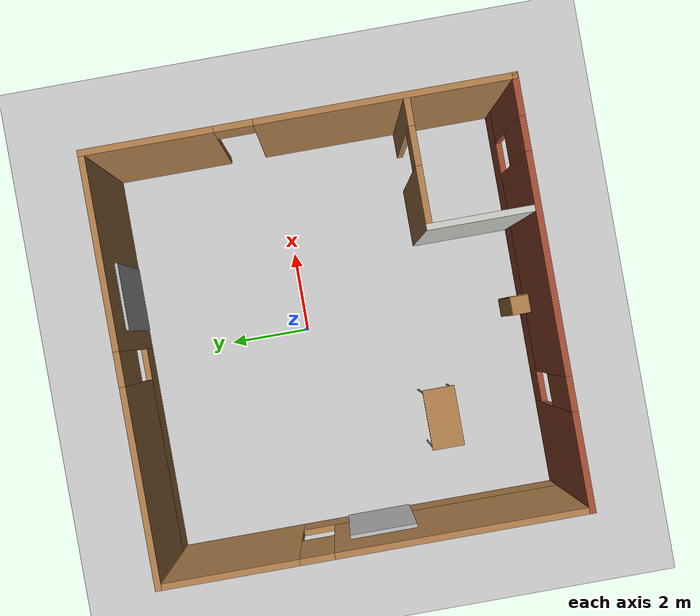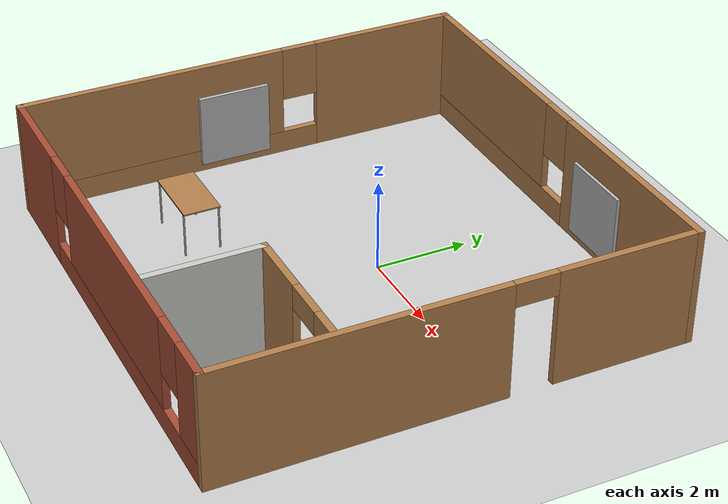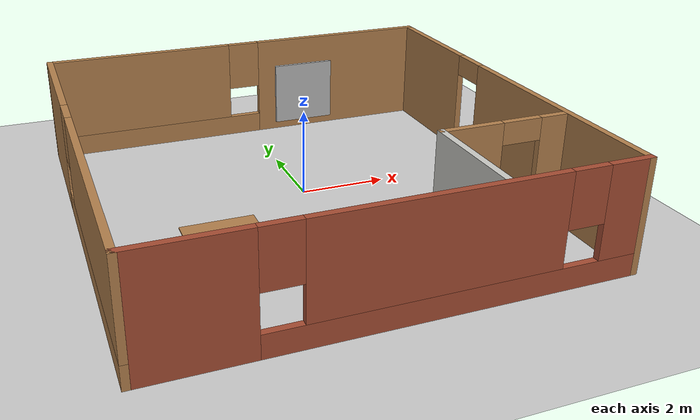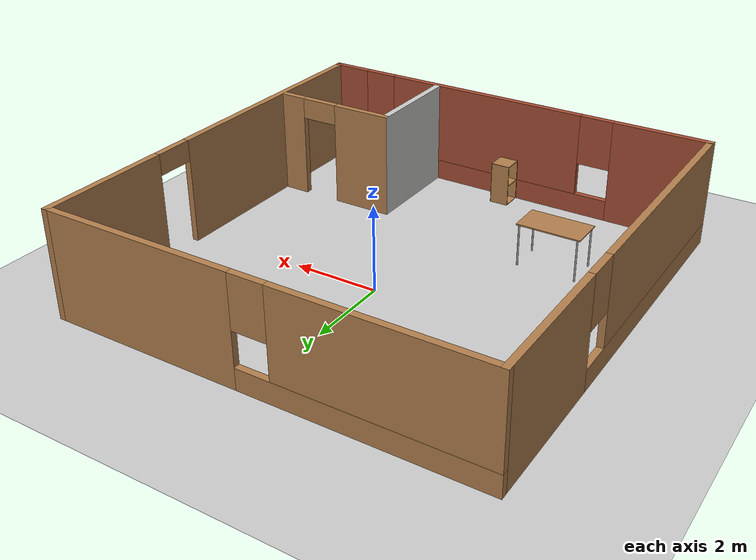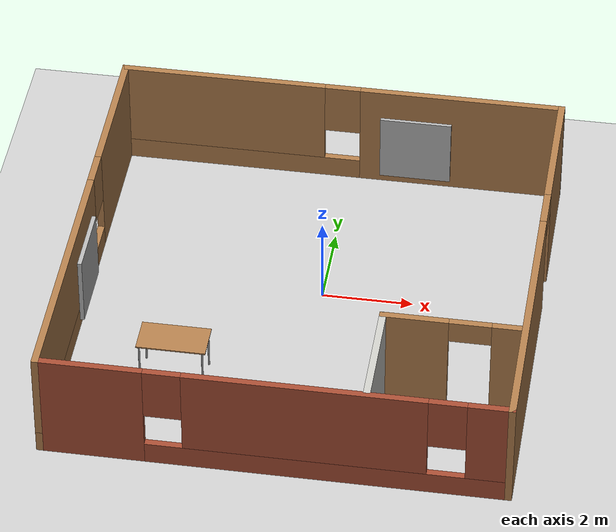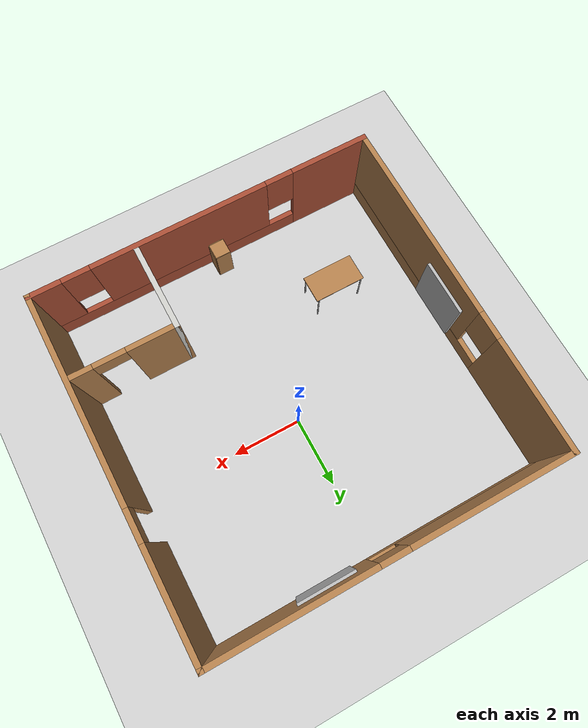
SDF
<sdf version="1.4">
 <world name="default">
  <light name="sun" type="directional">
   <pose>0 0 10 0 -0 0</pose>
   <diffuse>0.8 0.8 0.8 1</diffuse>
   <specular>0.2 0.2 0.2 1</specular>
   <attenuation>
    <range>1000</range>
    <constant>0.9</constant>
    <linear>0.01</linear>
    <quadratic>0.001</quadratic>
   </attenuation>
   <direction>-0.5 0.1 -0.9</direction>
   <spot><inner_angle>0</inner_angle><outer_angle>0</outer_angle><falloff>0</falloff></spot>
  </light>
  <light name="my_point_light" type="point">
   <pose>0 0 8 0 0 0</pose>
   <diffuse>1 1 1 0.001</diffuse>
   <attenuation>
    <range>10.0</range>
    <linear>0.01</linear>
    <constant>0.01</constant>
    <quadratic>0.001</quadratic>
   </attenuation>
  </light>
  <model name="omars_mesh">
   <pose>1.5 4.1 1  0 0 1.570795</pose>
   <static>true</static>
   <link name="o_body">
    <visual name="o_visual">
     <geometry><mesh><uri>file:///home/oelhajji/catkin_ws/src/my_first_robot/model/omar.dae</uri></mesh></geometry>
    </visual>
   </link>
  </model>
  <model name="ewans_mesh">
   <pose>-5 -1 1  0 0 0</pose>
   <static>true</static>
   <link name="e_body">
    <visual name="e_visual">
     <geometry><mesh><uri>file:///home/oelhajji/catkin_ws/src/my_first_robot/model/ewan.dae</uri></mesh></geometry>
    </visual>
   </link>
  </model>
  <model name="ground_plane">
   <static>1</static>
   <link name="link">
    <collision name="collision">
     <geometry><plane><normal>0 0 1</normal><size>100 100</size></plane></geometry>
     <surface>
      <contact><collide_bitmask>65535</collide_bitmask></contact>
      <friction><ode><mu>100</mu><mu2>50</mu2></ode></friction>
     </surface>
    </collision>
    <visual name="visual">
     <cast_shadows>0</cast_shadows>
     <geometry><plane><normal>0 0 1</normal><size>100 100</size></plane></geometry>
     <material>
      <script><uri>file://media/materials/scripts/gazebo.material</uri><name>Gazebo/Grey</name></script>
     </material>
    </visual>
   </link>
  </model>
  <gravity>0 0 -9.8</gravity>
  <magnetic_field>6e-06 2.3e-05 -4.2e-05</magnetic_field>
  <atmosphere type="adiabatic"/>
  <physics type="ode">
   <max_step_size>0.001</max_step_size>
   <real_time_factor>1</real_time_factor>
   <real_time_update_rate>1000</real_time_update_rate>
  </physics>
  <scene><ambient>0.4 0.4 0.4 1</ambient><background>0.7 0.7 0.7 1</background><shadows>1</shadows></scene>
  <spherical_coordinates>
   <surface_model>EARTH_WGS84</surface_model>
   <latitude_deg>0</latitude_deg>
   <longitude_deg>0</longitude_deg>
   <elevation>0</elevation>
   <heading_deg>0</heading_deg>
  </spherical_coordinates>
  <model name="new_world">
   <pose>-0.192361 -0.72628 0 0 -0 0</pose>
   <link name="Wall_15">
    <pose>0 -4.925 0 0 -0 0</pose>
    <visual name="Wall_15_Visual_0">
     <pose>-3.84593 0 1.25 0 -0 0</pose>
     <geometry><box><size>2.30814 0.15 2.5</size></box></geometry>
     <material>
      <script><uri>file://media/materials/scripts/gazebo.material</uri><name>Gazebo/Bricks</name></script>
      <ambient>1 1 1 1</ambient>
     </material>
     <meta><layer>0</layer></meta>
    </visual>
    <collision name="Wall_15_Collision_0">
     <geometry><box><size>2.30814 0.15 2.5</size></box></geometry>
     <pose>-3.84593 0 1.25 0 -0 0</pose>
    </collision>
    <visual name="Wall_15_Visual_1">
     <pose>1.15407 0 0.25 0 -0 0</pose>
     <geometry><box><size>7.69186 0.15 0.5</size></box></geometry>
     <material>
      <script><uri>file://media/materials/scripts/gazebo.material</uri><name>Gazebo/Bricks</name></script>
      <ambient>1 1 1 1</ambient>
     </material>
     <meta><layer>0</layer></meta>
    </visual>
    <collision name="Wall_15_Collision_1">
     <geometry><box><size>7.69186 0.15 0.5</size></box></geometry>
     <pose>1.15407 0 0.25 0 -0 0</pose>
    </collision>
    <visual name="Wall_15_Visual_2">
     <pose>0.660761 0 1.5 0 -0 0</pose>
     <geometry><box><size>5.10524 0.15 2</size></box></geometry>
     <material>
      <script><uri>file://media/materials/scripts/gazebo.material</uri><name>Gazebo/Bricks</name></script>
      <ambient>1 1 1 1</ambient>
     </material>
     <meta><layer>0</layer></meta>
    </visual>
    <collision name="Wall_15_Collision_2">
     <geometry><box><size>5.10524 0.15 2</size></box></geometry>
     <pose>0.660761 0 1.5 0 -0 0</pose>
    </collision>
    <visual name="Wall_15_Visual_3">
     <pose>4.50669 0 1.5 0 -0 0</pose>
     <geometry><box><size>0.986616 0.15 2</size></box></geometry>
     <material>
      <script><uri>file://media/materials/scripts/gazebo.material</uri><name>Gazebo/Bricks</name></script>
      <ambient>1 1 1 1</ambient>
     </material>
     <meta><layer>0</layer></meta>
    </visual>
    <collision name="Wall_15_Collision_3">
     <geometry><box><size>0.986616 0.15 2</size></box></geometry>
     <pose>4.50669 0 1.5 0 -0 0</pose>
    </collision>
    <visual name="Wall_15_Visual_4">
     <pose>-2.29186 0 1.9 0 -0 0</pose>
     <geometry><box><size>0.8 0.15 1.2</size></box></geometry>
     <material>
      <script><uri>file://media/materials/scripts/gazebo.material</uri><name>Gazebo/Bricks</name></script>
      <ambient>1 1 1 1</ambient>
     </material>
     <meta><layer>0</layer></meta>
    </visual>
    <collision name="Wall_15_Collision_4">
     <geometry><box><size>0.8 0.15 1.2</size></box></geometry>
     <pose>-2.29186 0 1.9 0 -0 0</pose>
    </collision>
    <visual name="Wall_15_Visual_5">
     <pose>3.61338 0 1.9 0 -0 0</pose>
     <geometry><box><size>0.8 0.15 1.2</size></box></geometry>
     <material>
      <script><uri>file://media/materials/scripts/gazebo.material</uri><name>Gazebo/Bricks</name></script>
      <ambient>1 1 1 1</ambient>
     </material>
     <meta><layer>0</layer></meta>
    </visual>
    <collision name="Wall_15_Collision_5">
     <geometry><box><size>0.8 0.15 1.2</size></box></geometry>
     <pose>3.61338 0 1.9 0 -0 0</pose>
    </collision>
   </link>
   <link name="Wall_16">
    <pose>4.925 0 0 0 -0 1.5708</pose>
    <visual name="Wall_16_Visual_0">
     <pose>-1.98961 0 1.25 0 -0 0</pose>
     <geometry><box><size>6.02079 0.15 2.5</size></box></geometry>
     <material>
      <script><uri>file://media/materials/scripts/gazebo.material</uri><name>Gazebo/Wood</name></script>
      <ambient>1 1 1 1</ambient>
     </material>
     <meta><layer>0</layer></meta>
    </visual>
    <collision name="Wall_16_Collision_0">
     <geometry><box><size>6.02079 0.15 2.5</size></box></geometry>
     <pose>-1.98961 0 1.25 0 -0 0</pose>
    </collision>
    <visual name="Wall_16_Visual_1">
     <pose>3.46039 0 1.25 0 -0 0</pose>
     <geometry><box><size>3.07921 0.15 2.5</size></box></geometry>
     <material>
      <script><uri>file://media/materials/scripts/gazebo.material</uri><name>Gazebo/Wood</name></script>
      <ambient>1 1 1 1</ambient>
     </material>
     <meta><layer>0</layer></meta>
    </visual>
    <collision name="Wall_16_Collision_1">
     <geometry><box><size>3.07921 0.15 2.5</size></box></geometry>
     <pose>3.46039 0 1.25 0 -0 0</pose>
    </collision>
    <visual name="Wall_16_Visual_2">
     <pose>1.47079 0 2.25 0 -0 0</pose>
     <geometry><box><size>0.9 0.15 0.5</size></box></geometry>
     <material>
      <script><uri>file://media/materials/scripts/gazebo.material</uri><name>Gazebo/Wood</name></script>
      <ambient>1 1 1 1</ambient>
     </material>
     <meta><layer>0</layer></meta>
    </visual>
    <collision name="Wall_16_Collision_2">
     <geometry><box><size>0.9 0.15 0.5</size></box></geometry>
     <pose>1.47079 0 2.25 0 -0 0</pose>
    </collision>
   </link>
   <link name="Wall_17">
    <pose>0 4.925 0 0 -0 3.14159</pose>
    <visual name="Wall_17_Visual_0">
     <pose>-2.71118 0 1.25 0 -0 0</pose>
     <geometry><box><size>4.57764 0.15 2.5</size></box></geometry>
     <material>
      <script><uri>file://media/materials/scripts/gazebo.material</uri><name>Gazebo/Wood</name></script>
      <ambient>1 1 1 1</ambient>
     </material>
     <meta><layer>0</layer></meta>
    </visual>
    <collision name="Wall_17_Collision_0">
     <geometry><box><size>4.57764 0.15 2.5</size></box></geometry>
     <pose>-2.71118 0 1.25 0 -0 0</pose>
    </collision>
    <visual name="Wall_17_Visual_1">
     <pose>2.28882 0 0.25 0 -0 0</pose>
     <geometry><box><size>5.42236 0.15 0.5</size></box></geometry>
     <material>
      <script><uri>file://media/materials/scripts/gazebo.material</uri><name>Gazebo/Wood</name></script>
      <ambient>1 1 1 1</ambient>
     </material>
     <meta><layer>0</layer></meta>
    </visual>
    <collision name="Wall_17_Collision_1">
     <geometry><box><size>5.42236 0.15 0.5</size></box></geometry>
     <pose>2.28882 0 0.25 0 -0 0</pose>
    </collision>
    <visual name="Wall_17_Visual_2">
     <pose>2.68882 0 1.5 0 -0 0</pose>
     <geometry><box><size>4.62236 0.15 2</size></box></geometry>
     <material>
      <script><uri>file://media/materials/scripts/gazebo.material</uri><name>Gazebo/Wood</name></script>
      <ambient>1 1 1 1</ambient>
     </material>
     <meta><layer>0</layer></meta>
    </visual>
    <collision name="Wall_17_Collision_2">
     <geometry><box><size>4.62236 0.15 2</size></box></geometry>
     <pose>2.68882 0 1.5 0 -0 0</pose>
    </collision>
    <visual name="Wall_17_Visual_3">
     <pose>-0.022357 0 1.9 0 -0 0</pose>
     <geometry><box><size>0.8 0.15 1.2</size></box></geometry>
     <material>
      <script><uri>file://media/materials/scripts/gazebo.material</uri><name>Gazebo/Wood</name></script>
      <ambient>1 1 1 1</ambient>
     </material>
     <meta><layer>0</layer></meta>
    </visual>
    <collision name="Wall_17_Collision_3">
     <geometry><box><size>0.8 0.15 1.2</size></box></geometry>
     <pose>-0.022357 0 1.9 0 -0 0</pose>
    </collision>
   </link>
   <link name="Wall_18">
    <pose>-4.925 0 0 0 -0 -1.5708</pose>
    <visual name="Wall_18_Visual_0">
     <pose>-3.35559 0 1.25 0 -0 0</pose>
     <geometry><box><size>3.28881 0.15 2.5</size></box></geometry>
     <material>
      <script><uri>file://media/materials/scripts/gazebo.material</uri><name>Gazebo/Wood</name></script>
      <ambient>1 1 1 1</ambient>
     </material>
     <meta><layer>0</layer></meta>
    </visual>
    <collision name="Wall_18_Collision_0">
     <geometry><box><size>3.28881 0.15 2.5</size></box></geometry>
     <pose>-3.35559 0 1.25 0 -0 0</pose>
    </collision>
    <visual name="Wall_18_Visual_1">
     <pose>1.64441 0 0.25 0 -0 0</pose>
     <geometry><box><size>6.71119 0.15 0.5</size></box></geometry>
     <material>
      <script><uri>file://media/materials/scripts/gazebo.material</uri><name>Gazebo/Wood</name></script>
      <ambient>1 1 1 1</ambient>
     </material>
     <meta><layer>0</layer></meta>
    </visual>
    <collision name="Wall_18_Collision_1">
     <geometry><box><size>6.71119 0.15 0.5</size></box></geometry>
     <pose>1.64441 0 0.25 0 -0 0</pose>
    </collision>
    <visual name="Wall_18_Visual_2">
     <pose>2.04441 0 1.5 0 -0 0</pose>
     <geometry><box><size>5.91119 0.15 2</size></box></geometry>
     <material>
      <script><uri>file://media/materials/scripts/gazebo.material</uri><name>Gazebo/Wood</name></script>
      <ambient>1 1 1 1</ambient>
     </material>
     <meta><layer>0</layer></meta>
    </visual>
    <collision name="Wall_18_Collision_2">
     <geometry><box><size>5.91119 0.15 2</size></box></geometry>
     <pose>2.04441 0 1.5 0 -0 0</pose>
    </collision>
    <visual name="Wall_18_Visual_3">
     <pose>-1.31119 0 1.9 0 -0 0</pose>
     <geometry><box><size>0.8 0.15 1.2</size></box></geometry>
     <material>
      <script><uri>file://media/materials/scripts/gazebo.material</uri><name>Gazebo/Wood</name></script>
      <ambient>1 1 1 1</ambient>
     </material>
     <meta><layer>0</layer></meta>
    </visual>
    <collision name="Wall_18_Collision_3">
     <geometry><box><size>0.8 0.15 1.2</size></box></geometry>
     <pose>-1.31119 0 1.9 0 -0 0</pose>
    </collision>
   </link>
   <link name="Wall_24">
    <collision name="Wall_24_Collision">
     <geometry><box><size>2.5 0.15 2.5</size></box></geometry>
     <pose>0 0 1.25 0 -0 0</pose>
    </collision>
    <visual name="Wall_24_Visual">
     <pose>0 0 1.25 0 -0 0</pose>
     <geometry><box><size>2.5 0.15 2.5</size></box></geometry>
     <material>
      <script><uri>file://media/materials/scripts/gazebo.material</uri><name>Gazebo/CeilingTiled</name></script>
      <ambient>1 1 1 1</ambient>
     </material>
     <meta><layer>0</layer></meta>
    </visual>
    <pose>1.93757 -3.63186 0 0 -0 1.5708</pose>
   </link>
   <link name="Wall_25">
    <pose>3.36257 -2.45686 0 0 -0 0</pose>
    <visual name="Wall_25_Visual_0">
     <pose>-0.769793 0 1.25 0 -0 0</pose>
     <geometry><box><size>1.46041 0.15 2.5</size></box></geometry>
     <material>
      <script><uri>file://media/materials/scripts/gazebo.material</uri><name>Gazebo/Wood</name></script>
      <ambient>1 1 1 1</ambient>
     </material>
     <meta><layer>0</layer></meta>
    </visual>
    <collision name="Wall_25_Collision_0">
     <geometry><box><size>1.46041 0.15 2.5</size></box></geometry>
     <pose>-0.769793 0 1.25 0 -0 0</pose>
    </collision>
    <visual name="Wall_25_Visual_1">
     <pose>1.18021 0 1.25 0 -0 0</pose>
     <geometry><box><size>0.639586 0.15 2.5</size></box></geometry>
     <material>
      <script><uri>file://media/materials/scripts/gazebo.material</uri><name>Gazebo/Wood</name></script>
      <ambient>1 1 1 1</ambient>
     </material>
     <meta><layer>0</layer></meta>
    </visual>
    <collision name="Wall_25_Collision_1">
     <geometry><box><size>0.639586 0.15 2.5</size></box></geometry>
     <pose>1.18021 0 1.25 0 -0 0</pose>
    </collision>
    <visual name="Wall_25_Visual_2">
     <pose>0.410414 0 2.25 0 -0 0</pose>
     <geometry><box><size>0.9 0.15 0.5</size></box></geometry>
     <material>
      <script><uri>file://media/materials/scripts/gazebo.material</uri><name>Gazebo/Wood</name></script>
      <ambient>1 1 1 1</ambient>
     </material>
     <meta><layer>0</layer></meta>
    </visual>
    <collision name="Wall_25_Collision_2">
     <geometry><box><size>0.9 0.15 0.5</size></box></geometry>
     <pose>0.410414 0 2.25 0 -0 0</pose>
    </collision>
   </link>
   <static>1</static>
  </model>
  <model name="table">
   <static>1</static>
   <link name="link">
    <collision name="surface">
     <pose>0 0 1 0 -0 0</pose>
     <geometry><box><size>1.5 0.8 0.03</size></box></geometry>
     <surface><friction><ode><mu>0.6</mu><mu2>0.6</mu2></ode></friction></surface>
    </collision>
    <visual name="visual1">
     <pose>0 0 1 0 -0 0</pose>
     <geometry><box><size>1.5 0.8 0.03</size></box></geometry>
     <material>
      <script><uri>file://media/materials/scripts/gazebo.material</uri><name>Gazebo/Wood</name></script>
     </material>
    </visual>
    <collision name="front_left_leg">
     <pose>0.68 0.38 0.5 0 -0 0</pose>
     <geometry><cylinder><radius>0.02</radius><length>1</length></cylinder></geometry>
    </collision>
    <visual name="front_left_leg">
     <pose>0.68 0.38 0.5 0 -0 0</pose>
     <geometry><cylinder><radius>0.02</radius><length>1</length></cylinder></geometry>
     <material>
      <script><uri>file://media/materials/scripts/gazebo.material</uri><name>Gazebo/Grey</name></script>
     </material>
    </visual>
    <collision name="front_right_leg">
     <pose>0.68 -0.38 0.5 0 -0 0</pose>
     <geometry><cylinder><radius>0.02</radius><length>1</length></cylinder></geometry>
    </collision>
    <visual name="front_right_leg">
     <pose>0.68 -0.38 0.5 0 -0 0</pose>
     <geometry><cylinder><radius>0.02</radius><length>1</length></cylinder></geometry>
     <material>
      <script><uri>file://media/materials/scripts/gazebo.material</uri><name>Gazebo/Grey</name></script>
     </material>
    </visual>
    <collision name="back_right_leg">
     <pose>-0.68 -0.38 0.5 0 -0 0</pose>
     <geometry><cylinder><radius>0.02</radius><length>1</length></cylinder></geometry>
    </collision>
    <visual name="back_right_leg">
     <pose>-0.68 -0.38 0.5 0 -0 0</pose>
     <geometry><cylinder><radius>0.02</radius><length>1</length></cylinder></geometry>
     <material>
      <script><uri>file://media/materials/scripts/gazebo.material</uri><name>Gazebo/Grey</name></script>
     </material>
    </visual>
    <collision name="back_left_leg">
     <pose>-0.68 0.38 0.5 0 -0 0</pose>
     <geometry><cylinder><radius>0.02</radius><length>1</length></cylinder></geometry>
    </collision>
    <visual name="back_left_leg">
     <pose>-0.68 0.38 0.5 0 -0 0</pose>
     <geometry><cylinder><radius>0.02</radius><length>1</length></cylinder></geometry>
     <material>
      <script><uri>file://media/materials/scripts/gazebo.material</uri><name>Gazebo/Grey</name></script>
     </material>
    </visual>
   </link>
   <pose>-2.75503 -2.95735 0 0 -0 0</pose>
  </model>
  <model name="cabinet">
   <static>1</static>
   <link name="cabinet_bottom_plate">
    <inertial>
     <pose>0 0 -1 0 -0 0</pose>
     <inertia><ixx>2.05</ixx><ixy>0</ixy><ixz>0</ixz><iyy>2.05</iyy><iyz>0</iyz><izz>2.05</izz></inertia>
     <mass>25</mass>
    </inertial>
    <collision name="cabinet_bottom_plate_geom">
     <pose>0 0 0.01 0 -0 0</pose>
     <geometry><box><size>0.45 0.45 0.02</size></box></geometry>
    </collision>
    <visual name="cabinet_bottom_plate_geom_visual">
     <pose>0 0 0.01 0 -0 0</pose>
     <geometry><box><size>0.45 0.45 0.02</size></box></geometry>
     <material>
      <script><uri>file://media/materials/scripts/gazebo.material</uri><name>Gazebo/Wood</name></script>
     </material>
    </visual>
    <collision name="cabinet_bottom_plate_geom_cabinet_back_plate">
     <pose>0.235 0 0.51 0 -0 0</pose>
     <geometry><box><size>0.02 0.45 1.02</size></box></geometry>
    </collision>
    <visual name="cabinet_bottom_plate_geom_cabinet_back_plate_visual">
     <pose>0.235 0 0.51 0 -0 0</pose>
     <geometry><box><size>0.02 0.45 1.02</size></box></geometry>
     <material>
      <script><uri>file://media/materials/scripts/gazebo.material</uri><name>Gazebo/Wood</name></script>
     </material>
    </visual>
    <collision name="cabinet_bottom_plate_geom_cabinet_left_plate">
     <pose>0 0.235 0.51 0 -0 0</pose>
     <geometry><box><size>0.45 0.02 1.02</size></box></geometry>
    </collision>
    <visual name="cabinet_bottom_plate_geom_cabinet_left_plate_visual">
     <pose>0 0.235 0.51 0 -0 0</pose>
     <geometry><box><size>0.45 0.02 1.02</size></box></geometry>
     <material>
      <script><uri>file://media/materials/scripts/gazebo.material</uri><name>Gazebo/Wood</name></script>
     </material>
    </visual>
    <collision name="cabinet_bottom_plate_geom_cabinet_middle_plate">
     <pose>0 0 0.51 0 -0 0</pose>
     <geometry><box><size>0.45 0.45 0.02</size></box></geometry>
    </collision>
    <visual name="cabinet_bottom_plate_geom_cabinet_middle_plate_visual">
     <pose>0 0 0.51 0 -0 0</pose>
     <geometry><box><size>0.45 0.45 0.02</size></box></geometry>
     <material>
      <script><uri>file://media/materials/scripts/gazebo.material</uri><name>Gazebo/Wood</name></script>
     </material>
    </visual>
    <collision name="cabinet_bottom_plate_geom_cabinet_right_plate">
     <pose>0 -0.235 0.51 0 -0 0</pose>
     <geometry><box><size>0.45 0.02 1.02</size></box></geometry>
    </collision>
    <visual name="cabinet_bottom_plate_geom_cabinet_right_plate_visual">
     <pose>0 -0.235 0.51 0 -0 0</pose>
     <geometry><box><size>0.45 0.02 1.02</size></box></geometry>
     <material>
      <script><uri>file://media/materials/scripts/gazebo.material</uri><name>Gazebo/Wood</name></script>
     </material>
    </visual>
    <collision name="cabinet_bottom_plate_geom_cabinet_top_plate">
     <pose>0 0 1.01 0 -0 0</pose>
     <geometry><box><size>0.45 0.45 0.02</size></box></geometry>
    </collision>
    <visual name="cabinet_bottom_plate_geom_cabinet_top_plate_visual">
     <pose>0 0 1.01 0 -0 0</pose>
     <geometry><box><size>0.45 0.45 0.02</size></box></geometry>
     <material>
      <script><uri>file://media/materials/scripts/gazebo.material</uri><name>Gazebo/Wood</name></script>
     </material>
    </visual>
   </link>
   <pose>-0.341358 -5.31752 0 0 -0 0</pose>
  </model>
 </world>
</sdf>
